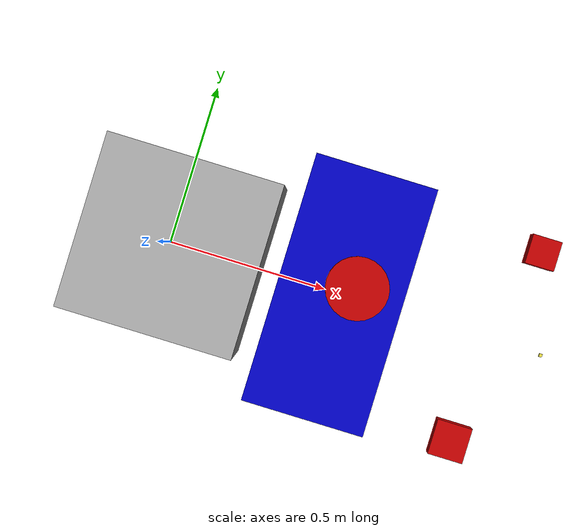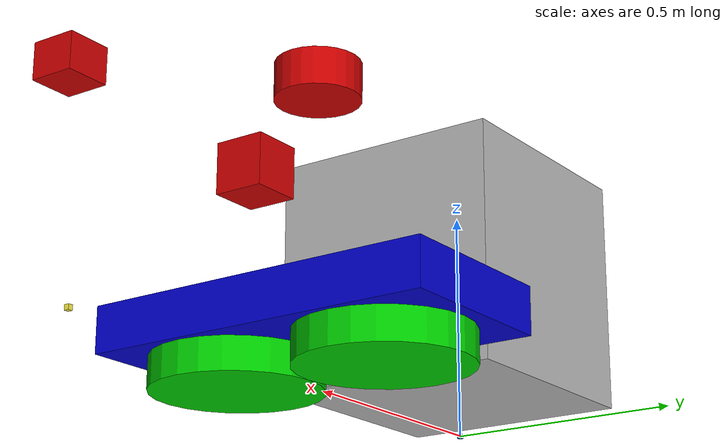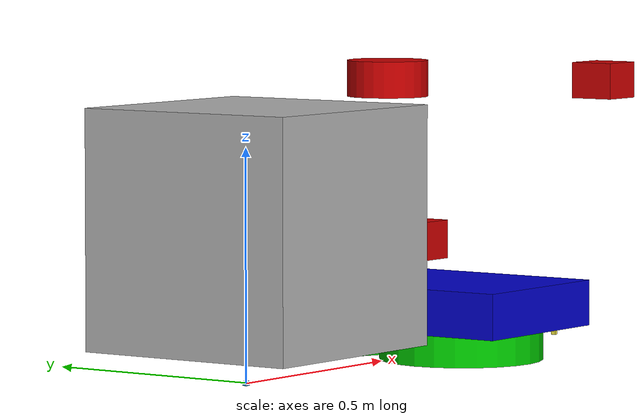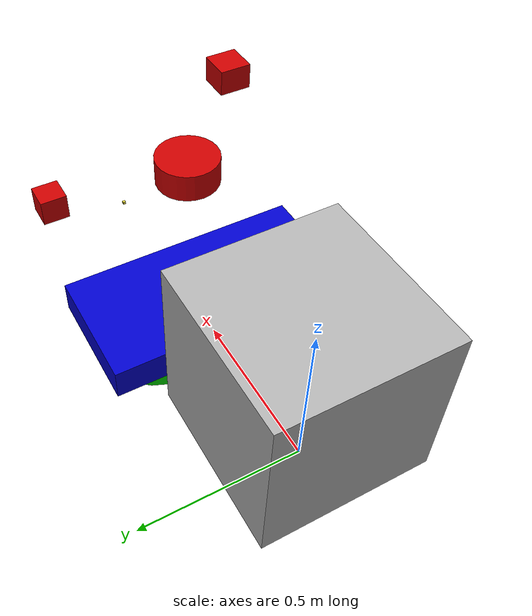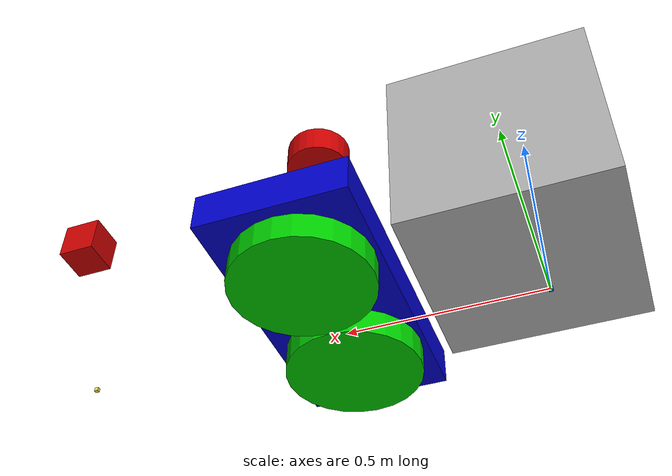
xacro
<robot name="automow">
    <material name="Blue">
        <color rgba="0.0 0.0 0.8 1.0"/>
    </material>
    <material name="Green">
        <color rgba="0.0 0.8 0.0 1.0"/>
    </material>
    <material name="Grey">
        <color rgba="0.7 0.7 0.7 1.0"/>
    </material>
    <material name="Grey2">
        <color rgba="0.9 0.9 0.9 1.0"/>
    </material>
    <material name="Red">
        <color rgba="0.8 0.0 0.0 1.0"/>
    </material>
    <material name="White">
        <color rgba="1.0 1.0 1.0 1.0"/>
    </material>
    <link name="base_link">
        <inertial>
            <mass value="100.0"/>
            <origin xyz="0.64 0.0 0.36"/>
            <inertia ixx="0.01" ixy="0.0" ixz="0.0" iyy="0.01" iyz="0.0" izz="0.01"/>
        </inertial>
        <visual>
            <origin rpy="0 0 0" xyz="0.2605 0 0.2579"/>
            <geometry>
                <box size="0.521 0.5157 0.5157"/>
            </geometry>
            <material name="Grey"/>
        </visual>
        <collision>
            <origin rpy="0 0 0" xyz="0.2605 0 0.36"/>
            <geometry>
                <box size="0.521 0.79 0.79"/>
            </geometry>
        </collision>
    </link>
    <link name="cutter_deck">
        <inertial>
            <mass value="20"/>
            <origin xyz="0 0 0"/>
            <inertia ixx="0.01" ixy="0.0" ixz="0.0" iyy="0.01" iyz="0.0" izz="0.01"/>
        </inertial>
        <visual>
            <origin rpy="0 0 0" xyz="0 0 -0.05"/>
            <geometry>
                <box size="0.383 0.78 0.1"/>
            </geometry>
            <material name="Blue"/>
        </visual>
        <collision>
            <origin rpy="0 0 0" xyz="0 0 -0.05"/>
            <geometry>
                <box size="0.383 0.78 0.1"/>
            </geometry>
        </collision>
    </link>
    <link name="base_imu">
        <inertial>
            <mass value="1.0"/>
            <origin xyz="0 0 0"/>
            <inertia ixx="0.01" ixy="0.0" ixz="0.0" iyy="0.01" iyz="0.0" izz="0.01"/>
        </inertial>
        <visual>
            <origin rpy="0 0 0" xyz="0 0 0"/>
            <geometry>
                <box size="0.01 0.01 0.01"/>
            </geometry>
        </visual>
    </link>
    <link name="camera_frame">
        <inertial>
            <mass value="1.0"/>
            <origin xyz="0 0 0"/>
            <inertia ixx="0.01" ixy="0.0" ixz="0.0" iyy="0.01" iyz="0.0" izz="0.01"/>
        </inertial>
        <visual>
            <origin rpy="0 0 0" xyz="0 0 0"/>
            <geometry>
                <box size="0.01 0.01 0.01"/>
            </geometry>
        </visual>
    </link>
    <link name="base_footprint">
        <inertial>
            <mass value="1.0"/>
            <origin xyz="0 0 0"/>
            <inertia ixx="0.01" ixy="0.0" ixz="0.0" iyy="0.01" iyz="0.0" izz="0.01"/>
        </inertial>
        <visual>
            <origin rpy="0 0 0" xyz="0 0 0"/>
            <geometry>
                <box size="0.01 0.01 0.01"/>
            </geometry>
        </visual>
    </link>
    <link name="base_laser" type="laser">
        <inertial>
            <mass value="1.0"/>
            <origin xyz="0 0 0"/>
            <inertia ixx="0.01" ixy="0.0" ixz="0.0" iyy="0.01" iyz="0.0" izz="0.01"/>
        </inertial>
        <visual>
            <origin rpy="0 0 0" xyz="0 0 0"/>
            <geometry>
                <box size="0.09 0.09 0.09"/>
            </geometry>
            <material name="Red"/>
        </visual>
        <collision>
            <origin rpy="0 0 0" xyz="0 0 0"/>
            <geometry>
                <box size="0.09 0.09 0.09"/>
            </geometry>
        </collision>
    </link>
    <link name="base_gps">
        <inertial>
            <mass value="1.0"/>
            <origin xyz="0 0 0"/>
            <inertia ixx="0.01" ixy="0.0" ixz="0.0" iyy="0.01" iyz="0.0" izz="0.01"/>
        </inertial>
        <visual>
            <origin rpy="0 0 0" xyz="0 0.04 0"/>
            <geometry>
                <cylinder radius="0.09" length="0.08"/>
            </geometry>
            <material name="Red"/>
        </visual>
        <collision>
            <origin rpy="0 0 0" xyz="0 0.04 0"/>
            <geometry>
                <cylinder radius="0.09" length="0.08"/>
            </geometry>
        </collision>
    </link>
    <link name="base_camera">
        <inertial>
            <mass value="1.0"/>
            <origin xyz="0 0 0"/>
            <inertia ixx="0.01" ixy="0.0" ixz="0.0" iyy="0.01" iyz="0.0" izz="0.01"/>
        </inertial>
        <visual>
            <origin rpy="0 0 0" xyz="0.05 0.05 0.04"/>
            <geometry>
                <box size="0.1 0.1 0.08"/>
            </geometry>
            <material name="Red"/>
        </visual>
        <collision>
            <origin rpy="0 0 0" xyz="0.05 0.05 0.04"/>
            <geometry>
                <box size="0.1 0.1 0.08"/>
            </geometry>
        </collision>
    </link>
    <link name="cutter_right">
        <inertial>
            <mass value="1.0"/>
            <origin xyz="0 0 0"/>
            <inertia ixx="0.01" ixy="0.0" ixz="0.0" iyy="0.01" iyz="0.0" izz="0.01"/>
        </inertial>
        <visual>
            <origin rpy="0 0 0" xyz="0 0 -0.12"/>
            <geometry>
                <cylinder radius="0.18" length="0.1"/>
            </geometry>
            <material name="Green"/>
        </visual>
        <collision>
            <origin rpy="0 0 0" xyz="0 0 -0.12"/>
            <geometry>
                <cylinder radius="0.18" length="0.1"/>
            </geometry>
        </collision>
    </link>
    <link name="cutter_left">
        <inertial>
            <mass value="1.0"/>
            <origin xyz="0 0 0"/>
            <inertia ixx="0.01" ixy="0.0" ixz="0.0" iyy="0.01" iyz="0.0" izz="0.01"/>
        </inertial>
        <visual>
            <origin rpy="0 0 0" xyz="0 0 -0.12"/>
            <geometry>
                <cylinder radius="0.18" length="0.1"/>
            </geometry>
            <material name="Green"/>
        </visual>
        <collision>
            <origin rpy="0 0 0" xyz="0 0 -0.12"/>
            <geometry>
                <cylinder radius="0.18" length="0.1"/>
            </geometry>
        </collision>
    </link>
    <joint name="base_footprint_joint" type="fixed">
        <origin rpy="0 0 0" xyz="-0.220 0 0.07"/>
        <child link="base_link"/>
        <parent link="base_footprint"/>
    </joint>
    <joint name="base_laser_joint" type="fixed">
        <origin rpy="3.14 0 0" xyz="1.31 0.3 0.14"/>
        <child link="base_laser"/>
        <parent link="base_link"/>
    </joint>
    <joint name="base_imu_joint" type="fixed">
        <origin rpy="0 0 0" xyz="0.220 0 0.1"/>
        <child link="base_imu"/>
        <parent link="base_link"/>
    </joint>
    <joint name="camera_frame_link" type="fixed">
        <origin rpy="0 0 -1.57" xyz="1.4224 0 -0.07"/>
        <child link="camera_frame"/>
        <parent link="base_link"/>
    </joint>
    <joint name="base_gps_joint" type="fixed">
        <origin rpy="0 0 0" xyz="0.8 0 0.55"/>
        <child link="base_gps"/>
        <parent link="base_link"/>
    </joint>
    <joint name="base_camera_joint" type="fixed">
        <origin rpy="0 0 0" xyz="1.12 -0.34 0.5"/>
        <child link="base_camera"/>
        <parent link="base_link"/>
    </joint>
    <joint name="cutter_deck_joint" type="fixed">
        <origin rpy="0 0 0" xyz="0.767 0 0.113"/>
        <child link="cutter_deck"/>
        <parent link="base_link"/>
    </joint>
    <joint name="cutter_right_joint" type="fixed">
        <origin rpy="0 0 0" xyz="0 0.180 0"/>
        <child link="cutter_right"/>
        <parent link="cutter_deck"/>
    </joint>
    <joint name="cutter_left_joint" type="fixed">
        <origin rpy="0 0 0" xyz="0 -0.180 0"/>
        <child link="cutter_left"/>
        <parent link="cutter_deck"/>
    </joint>
</robot>
